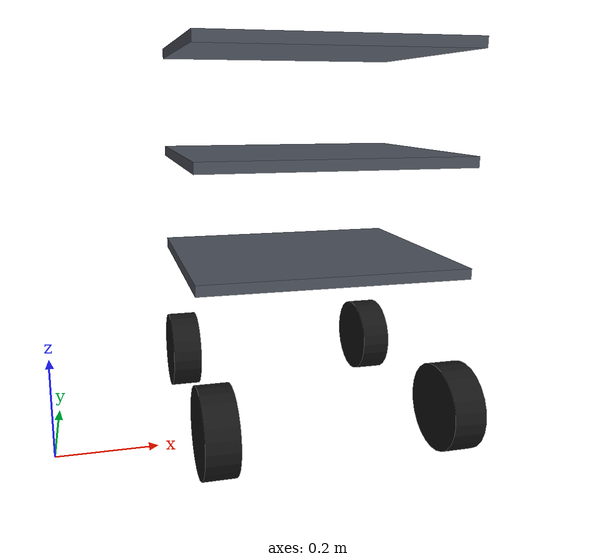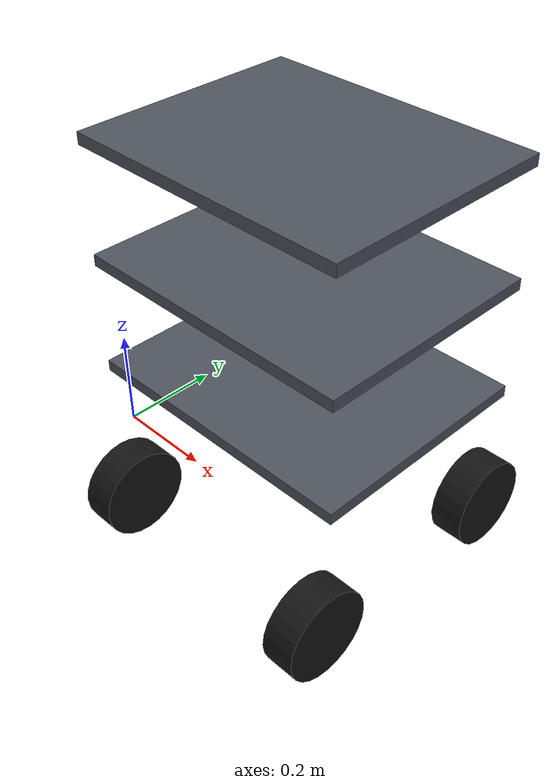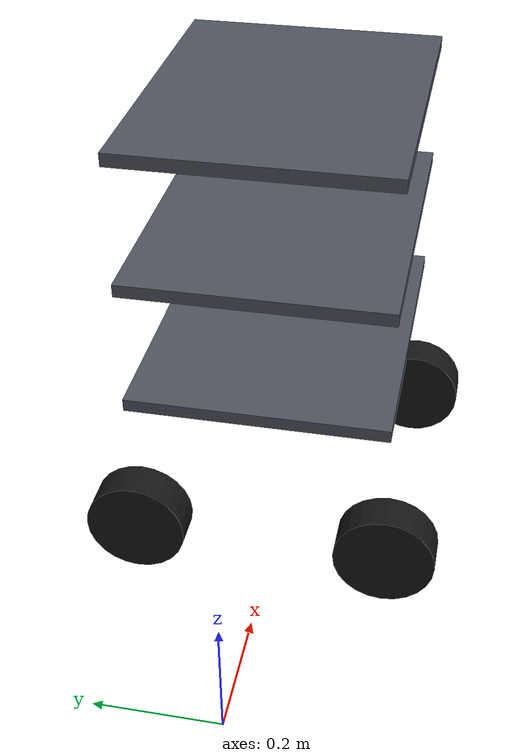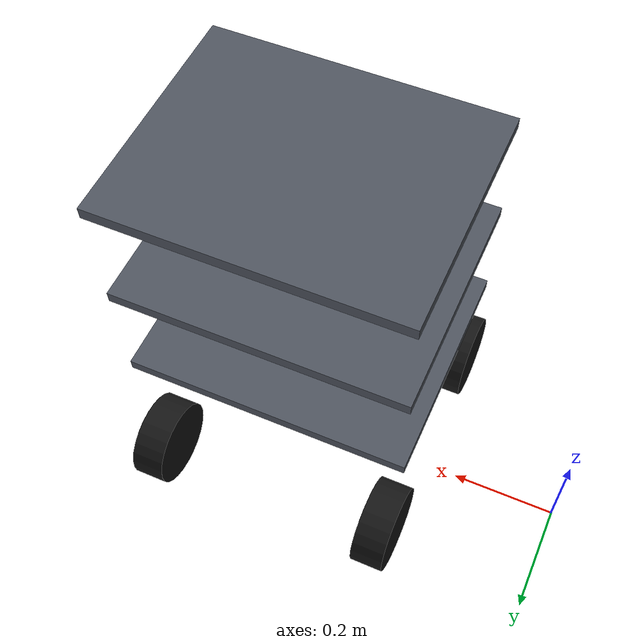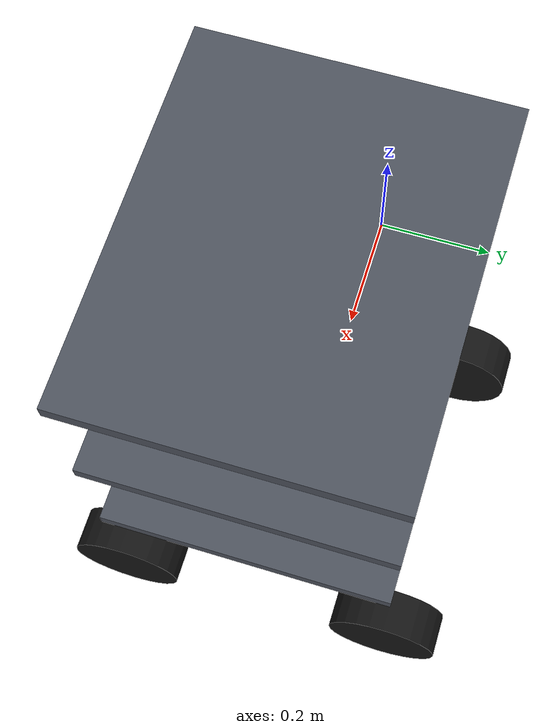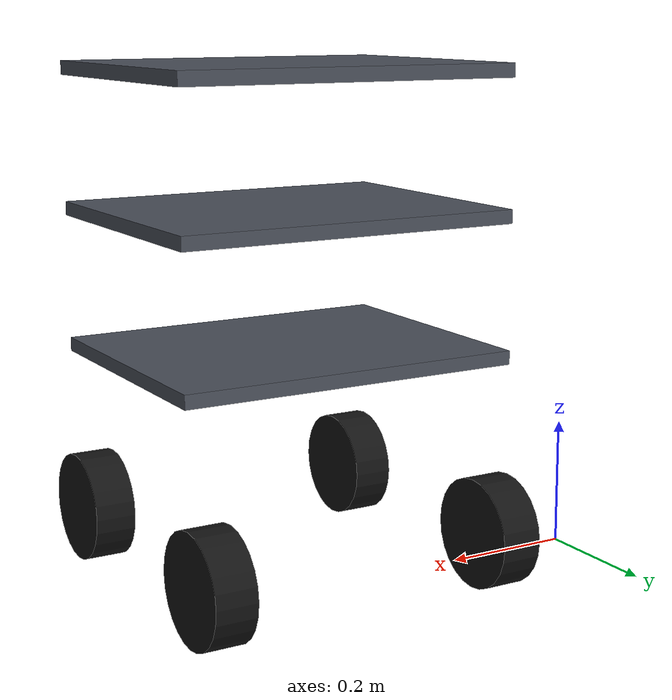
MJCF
<mujoco model="multi_level_profile_cart">
  <compiler angle="radian"/>

  <worldbody>
    <body name="base_link" pos="0.5 0.0 0.125" quat="0 0 0 1">
      <inertial pos="0 -0.189474 0.05" quat="0.5 0.5 -0.5 0.5" mass="9.5" diaginertia="1.08895 0.938947 0.45"/>
      <joint name="floating_base_joint2" type="free"/>
      <geom size="0.25 0.2 0.01" pos="0 0 0.25" type="box" rgba="0.3 0.32 0.36 1"/>
      <geom size="0.25 0.2 0.01" pos="0 0 0.45" type="box" rgba="0.3 0.32 0.36 1"/>
      <geom size="0.25 0.2 0.01" pos="0 0 0.65" type="box" rgba="0.3 0.32 0.36 1"/>
      <body name="front_left_wheel_mount" pos="0.22 0.2 0">
        <inertial pos="0 0 0" mass="0.2" diaginertia="0.0002 0.0002 0.0002"/>
        <joint name="front_left_wheel_yaw_joint" pos="0 0 0" axis="0 0 1" damping="0.05" frictionloss="0.01"/>
        <body name="front_left_wheel">
          <inertial pos="0 0 0" mass="0.5" diaginertia="0.003 0.003 0.003"/>
          <joint name="front_left_wheel_spin_joint" pos="0 0 0" axis="1 0 0" damping="0.05" frictionloss="0.01"/>
          <geom size="0.08 0.03" quat="0.707107 0 0.707107 0" type="cylinder" rgba="0.08 0.08 0.08 1"/>
        </body>
      </body>
      <body name="front_right_wheel_mount" pos="0.22 -0.2 0">
        <inertial pos="0 0 0" mass="0.2" diaginertia="0.0002 0.0002 0.0002"/>
        <joint name="front_right_wheel_yaw_joint" pos="0 0 0" axis="0 0 1" damping="0.05" frictionloss="0.01"/>
        <body name="front_right_wheel">
          <inertial pos="0 0 0" mass="0.5" diaginertia="0.003 0.003 0.003"/>
          <joint name="front_right_wheel_spin_joint" pos="0 0 0" axis="1 0 0" damping="0.05" frictionloss="0.01"/>
          <geom size="0.08 0.03" quat="0.707107 0 0.707107 0" type="cylinder" rgba="0.08 0.08 0.08 1"/>
        </body>
      </body>
      <body name="rear_left_wheel_mount" pos="-0.22 0.2 0">
        <inertial pos="0 0 0" mass="0.2" diaginertia="0.0002 0.0002 0.0002"/>
        <joint name="rear_left_wheel_yaw_joint" pos="0 0 0" axis="0 0 1" damping="0.05" frictionloss="0.01"/>
        <body name="rear_left_wheel">
          <inertial pos="0 0 0" mass="0.5" diaginertia="0.003 0.003 0.003"/>
          <joint name="rear_left_wheel_spin_joint" pos="0 0 0" axis="1 0 0" damping="0.05" frictionloss="0.01"/>
          <geom size="0.08 0.03" quat="0.707107 0 0.707107 0" type="cylinder" rgba="0.08 0.08 0.08 1"/>
        </body>
      </body>
      <body name="rear_right_wheel_mount" pos="-0.22 -0.2 0">
        <inertial pos="0 0 0" mass="0.2" diaginertia="0.0002 0.0002 0.0002"/>
        <joint name="rear_right_wheel_yaw_joint" pos="0 0 0" axis="0 0 1" damping="0.05" frictionloss="0.01"/>
        <body name="rear_right_wheel">
          <inertial pos="0 0 0" mass="0.5" diaginertia="0.003 0.003 0.003"/>
          <joint name="rear_right_wheel_spin_joint" pos="0 0 0" axis="1 0 0" damping="0.05" frictionloss="0.01"/>
          <geom size="0.08 0.03" quat="0.707107 0 0.707107 0" type="cylinder" rgba="0.08 0.08 0.08 1"/>
        </body>
      </body>
    </body>
  </worldbody>
</mujoco>
